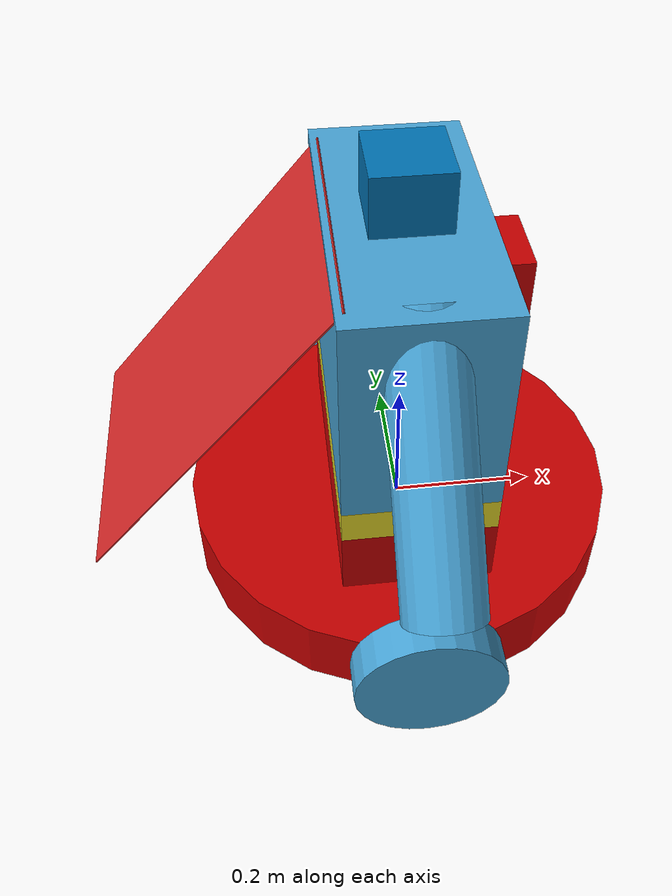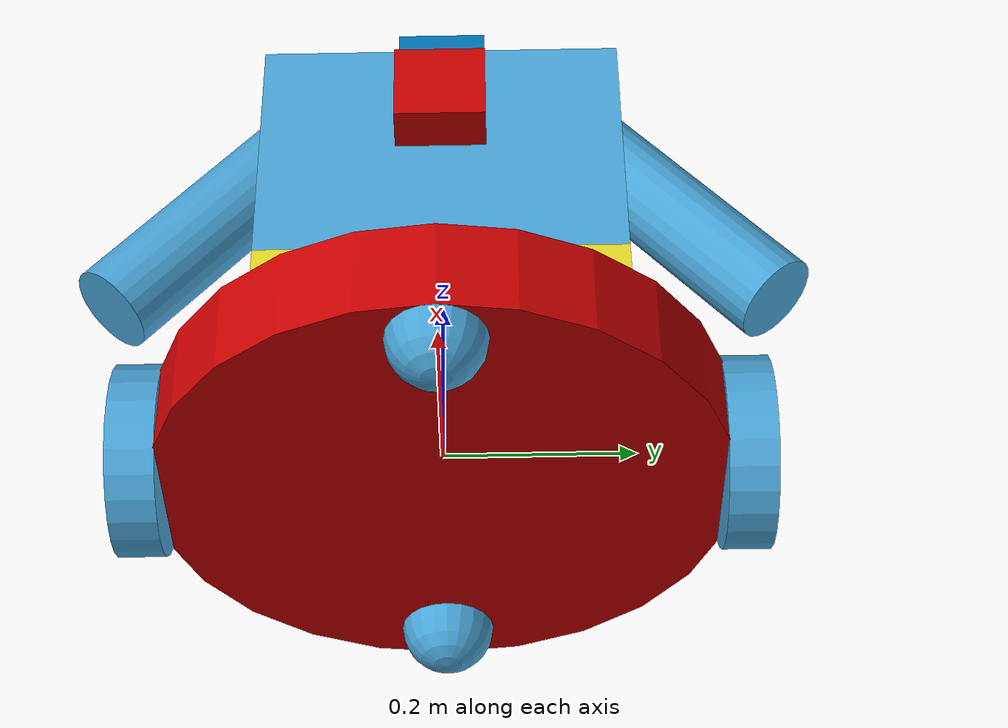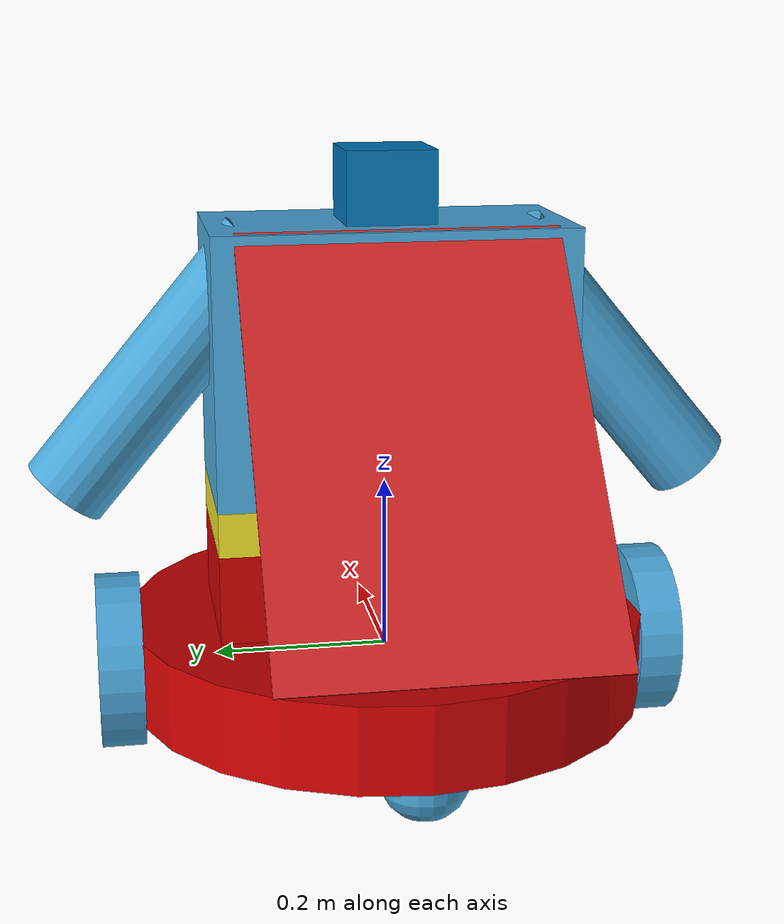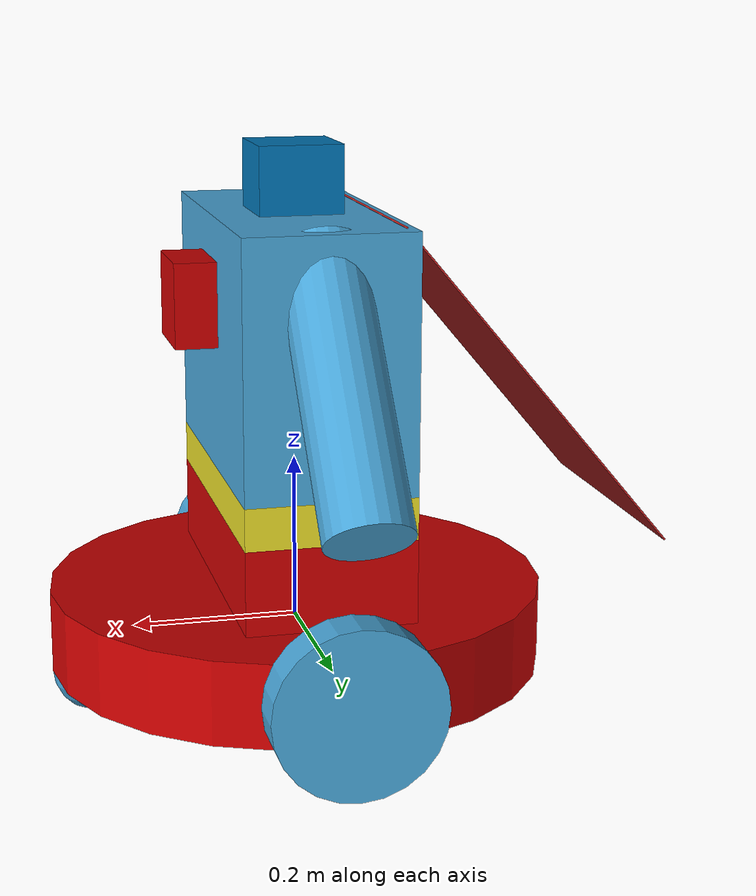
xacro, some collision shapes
<?xml version='1.0'?>

<robot name="udacity_bot" xmlns:xacro="http://www.ros.org/wiki/xacro">

  <link name="robot_footprint"></link>
  <xacro:include filename="$(find slam)/urdf/udacity_bot.gazebo" />

  <material name="blue">
    <color rgba="0.2824 0.6431 0.8392 1"/>
  </material>

  <material name="red">
    <color rgba="0.7843 0 0 1"/>
  </material>

  <joint name="robot_footprint_joint" type="fixed">
    <origin xyz="0 0 0" rpy="0 0 0" />
    <parent link="robot_footprint"/>
    <child link="chassis_base" />
  </joint>

  <link name='chassis_base'>
    <pose>0 0 0.1 0 0 0</pose>

    <inertial>
      <mass value="10.0"/>
      <origin xyz="0.0 0 0" rpy=" 0 0 0"/>
      <inertia
          ixx="0.1" ixy="0" ixz="0"
          iyy="0.1" iyz="0"
          izz="0.1"
      />
    </inertial>

    <collision name='collision'>
      <origin xyz="0 0 0" rpy=" 0 0 0"/>
      <geometry>
        <cylinder radius=".3" length="0.10"/>
      </geometry>
    </collision>

    <visual name='chassis_base_visual'>
      <origin xyz="0 0 0" rpy=" 0 0 0"/>
      <geometry>
        <cylinder radius=".3" length="0.10"/>
      </geometry>
      <material name="red"/>
    </visual>

    <collision name='back_caster_collision'>
      <origin xyz="-0.25 0 -0.05" rpy=" 0 0 0"/>
      <geometry>
        <sphere radius="0.0499"/>
      </geometry>
    </collision>

    <visual name='back_caster_visual'>
      <origin xyz="-0.25 0 -0.05" rpy=" 0 0 0"/>
      <geometry>
        <sphere radius="0.05"/>
      </geometry>
      <material name="blue"/>
    </visual>

    <collision name='front_caster_collision'>
      <origin xyz="0.25 0 -0.05" rpy=" 0 0 0"/>
      <geometry>
        <sphere radius="0.0499"/>
      </geometry>
    </collision>

    <visual name='front_caster_visual'>
      <origin xyz="0.25 0 -0.05" rpy=" 0 0 0"/>
      <geometry>
        <sphere radius="0.05"/>
      </geometry>
      <material name="blue"/>
    </visual>

  </link>

  <!--chassis lower-->

  <link name='chassis_lower'>
    <inertial>
      <mass value="5.0"/>
      <origin xyz="0.0 0 0" rpy=" 0 0 0"/>
      <inertia
          ixx="0.1" ixy="0" ixz="0"
          iyy="0.1" iyz="0"
          izz="0.1"
      />
    </inertial>

    <collision name='collision'>
      <origin xyz="0 0 0" rpy=" 0 0 0"/>
      <geometry>
        <box size=".2 .4 .1"/>
      </geometry>
    </collision>

    <visual name='chassis_lower_visual'>
      <origin xyz="0 0 0" rpy=" 0 0 0"/>
      <geometry>
        <box size=".2 .4 .1"/>
      </geometry>
      <material name="red"/>
    </visual>
   </link>

   <joint type="fixed" name="base_joint">
      <origin xyz="0 0 0.1" rpy="0 0 0"/>
      <child link="chassis_lower"/>
      <parent link="chassis_base"/>
      <axis xyz="0 1 0" rpy="0 0 0"/>
      <limit effort="10000" velocity="1000"/>
      <dynamics damping="1.0" friction="1.0"/>
    </joint>

 <!-- chassis mid -->

  <link name='chassis_mid'>
    <inertial>
      <mass value="1.0"/>
      <origin xyz="0.0 0 0" rpy=" 0 0 0"/>
      <inertia
          ixx="0.1" ixy="0" ixz="0"
          iyy="0.1" iyz="0"
          izz="0.1"
      />
    </inertial>

    <collision name='collision'>
      <origin xyz="0 0 0" rpy=" 0 0 0"/>
      <geometry>
        <box size=".2 .4 .05"/>
      </geometry>
    </collision>

    <visual name='chassis_mid_visual'>
      <origin xyz="0 0 0" rpy=" 0 0 0"/>
      <geometry>
        <box size=".2 .4 .05"/>
      </geometry>
    </visual>
   </link>

   <joint type="fixed" name="base_mid_joint">
      <origin xyz="0 0 0.075" rpy="0 0 0"/>
      <child link="chassis_mid"/>
      <parent link="chassis_lower"/>
      <axis xyz="0 1 0" rpy="0 0 0"/>
      <limit effort="10000" velocity="1000"/>
      <dynamics damping="1.0" friction="1.0"/>
    </joint>

  <!--main chassis -->

  <link name='chassis'>
    <inertial>
      <mass value="5.0"/>
      <origin xyz="0.0 0 0" rpy=" 0 0 0"/>
      <inertia
          ixx="0.1" ixy="0" ixz="0"
          iyy="0.1" iyz="0"
          izz="0.1"
      />
    </inertial>

    <collision name='collision'>
      <origin xyz="0 0 0" rpy=" 0 0 0"/>
      <geometry>
        <box size=".2 .4 .3"/>
      </geometry>
    </collision>

    <visual name='chassis_visual'>
      <origin xyz="0 0 0" rpy=" 0 0 0"/>
      <geometry>
        <box size=".2 .4 .3"/>
      </geometry>
      <material name="blue"/>
    </visual>
   </link>

   <joint type="fixed" name="base_top_joint">
      <origin xyz="0 0 0.175" rpy="0 0 0"/>
      <child link="chassis"/>
      <parent link="chassis_mid"/>
      <axis xyz="0 1 0" rpy="0 0 0"/>
      <limit effort="10000" velocity="1000"/>
      <dynamics damping="1.0" friction="1.0"/>
    </joint>

  <!--left wheel-->

  <link name='left_wheel'>

    <inertial>
      <mass value="5.0"/>
      <origin xyz="0.0 0 0" rpy=" 0 1.5707 1.5707"/>
      <inertia
 		ixx="0.1" ixy="0" ixz="0"
    	iyy="0.1" iyz="0"
    	izz="0.1"
      />
    </inertial>

    <collision name='collision'>
      <origin xyz="0 0 0" rpy=" 0 1.5707 1.5707"/>
      <geometry>
        <cylinder radius=".1" length="0.05"/>
      </geometry>
    </collision>

    <visual name='left_wheel_visual'>
      <origin xyz="0 0 0" rpy=" 0 1.5707 1.5707"/>
      <geometry>
        <cylinder radius=".1" length="0.05"/>
      </geometry>
      <material name="blue"/>
    </visual>

  </link>

  <joint type="continuous" name="left_wheel_hinge">
      <origin xyz="0 0.31 0" rpy="0 0 0"/>
      <child link="left_wheel"/>
      <parent link="chassis_base"/>
      <axis xyz="0 1 0" rpy="0 0 0"/>
      <limit effort="10000" velocity="1000"/>
      <dynamics damping="1.0" friction="1.0"/>
    </joint>

  <!--right wheel-->

  <link name='right_wheel'>

    <inertial>
      <mass value="5.0"/>
      <origin xyz="0.0 0 0" rpy=" 0 1.5707 1.5707"/>
      <inertia
 		ixx="0.1" ixy="0" ixz="0"
    	iyy="0.1" iyz="0"
    	izz="0.1"
      />
    </inertial>

    <collision name='collision'>
      <origin xyz="0 0 0" rpy=" 0 1.5707 1.5707"/>
      <geometry>
        <cylinder radius=".1" length="0.05"/>
      </geometry>
    </collision>

    <visual name='right_wheel_visual'>
      <origin xyz="0 0 0" rpy=" 0 1.5707 1.5707"/>
      <geometry>
        <cylinder radius=".1" length="0.05"/>
      </geometry>
      <material name="blue"/>
    </visual>

  </link>

    <joint type="continuous" name="right_wheel_hinge">
        <origin xyz="0 -0.31 0" rpy="0 0 0"/>
        <child link="right_wheel"/>
        <parent link="chassis_base"/>
        <axis xyz="0 1 0" rpy="0 0 0"/>
        <limit effort="10000" velocity="1000"/>
        <dynamics damping="1.0" friction="1.0"/>
      </joint>

  <!--left arm -->

  <link name='left_arm'>

    <inertial>
      <mass value="1.0"/>
      <origin xyz="0.0 0 0" rpy=" 0 -0.7 1.5707"/>
      <inertia
 		ixx="0.1" ixy="0" ixz="0"
    	iyy="0.1" iyz="0"
    	izz="0.1"
      />
    </inertial>

    <collision name='collision'>
      <origin xyz="0 0 0" rpy=" 0 -0.7 1.5707"/>
      <geometry>
        <cylinder radius=".05" length="0.35"/>
      </geometry>
    </collision>

    <visual name='left_arm_visual'>
      <origin xyz="0 0 0" rpy=" 0 -0.7 1.5707"/>
      <geometry>
        <cylinder radius=".05" length="0.35"/>
      </geometry>
      <material name="blue"/>
    </visual>

  </link>

  <joint type="continuous" name="left_arm_hinge">
      <origin xyz="0 0.25 -0.01" rpy="0 0 0"/>
      <child link="left_arm"/>
      <parent link="chassis"/>
      <axis xyz="0 1 0" rpy="0 0 0"/>
      <limit effort="10000" velocity="1000"/>
      <dynamics damping="1.0" friction="1.0"/>
    </joint>

  <!--right arm -->

  <link name='right_arm'>

    <inertial>
      <mass value="1.0"/>
      <origin xyz="0.0 0 0" rpy=" 0 0.7 1.5707"/>
      <inertia
 		ixx="0.1" ixy="0" ixz="0"
    	iyy="0.1" iyz="0"
    	izz="0.1"
      />
    </inertial>

    <collision name='collision'>
      <origin xyz="0 0 0" rpy=" 0 0.7 1.5707"/>
      <geometry>
        <cylinder radius=".05" length="0.35"/>
      </geometry>
    </collision>

    <visual name='right_arm_visual'>
      <origin xyz="0 0 0" rpy=" 0 0.7 1.5707"/>
      <geometry>
        <cylinder radius=".05" length="0.35"/>
      </geometry>
      <material name="blue"/>
    </visual>

  </link>

    <joint type="continuous" name="right_arm_hinge">
        <origin xyz="0 -0.25 -0.01" rpy="0 0 0"/>
        <child link="right_arm"/>
        <parent link="chassis"/>
        <axis xyz="0 1 0" rpy="0 0 0"/>
        <limit effort="10000" velocity="1000"/>
        <dynamics damping="1.0" friction="1.0"/>
      </joint>

   <!-- cape -->

  <link name='chassis_cape'>
    <inertial>
      <mass value="1.0"/>
      <origin xyz="0.0 0 0" rpy=" 0 0 0"/>
      <inertia
          ixx="0.1" ixy="0" ixz="0"
          iyy="0.1" iyz="0"
          izz="0.1"
      />
    </inertial>

    <collision name='collision'>
      <origin xyz="0 0 0" rpy=" 0 0 0"/>
      <geometry>
        <box size=".002 .35 .5"/>
      </geometry>
    </collision>

    <visual name='chassis_cape_visual'>
      <origin xyz="0 0 0" rpy=" 0 0 0"/>
      <geometry>
        <box size=".002 .35 .5"/>
      </geometry>
    </visual>
    <material name="red"/>
   </link>

   <joint type="fixed" name="chassis_cape_joint">
      <origin xyz="-0.25 0 -0.04" rpy="0 0.7 0"/>
      <child link="chassis_cape"/>
      <parent link="chassis"/>
      <axis xyz="0 1 0" rpy="0 0 0"/>
      <limit effort="10000" velocity="1000"/>
      <dynamics damping="1.0" friction="1.0"/>
    </joint>

   <!-- sensors -->

  <link name='camera'>

    <inertial>
      <mass value=".1"/>
      <origin xyz="0.0 0 0" rpy=" 0 0 0"/>
      <inertia
      	ixx="1e-6" ixy="0" ixz="0" iyy="1e-6" iyz="0" izz="1e-6"
      />
    </inertial>

    <collision name='collision'>
      <origin xyz="0 0 0" rpy=" 0 0 0"/>
      <geometry>
        <box size="0.1 0.1 0.1"/>
      </geometry>
    </collision>

    <visual name='camera_visual'>
      <origin xyz="0 0 0" rpy=" 0 0 0"/>
      <geometry>
        <box size="0.1 0.1 0.1"/>
      </geometry>
      <material name="red"/>
    </visual>

  </link>

    <joint type="fixed" name="camera_joint">
        <origin xyz="0.1 0 0.05" rpy="0 0 0"/>
        <child link="camera"/>
        <parent link="chassis"/>
        <axis xyz="0 1 0" rpy="0 0 0"/>
        <limit effort="10000" velocity="1000"/>
        <dynamics damping="1.0" friction="1.0"/>
      </joint>

  <link name="camera_rgbd_frame"></link>

  <joint name="camera_rgbd_joint" type="fixed">
    <origin xyz="0 0 0" rpy="-1.5707 0 -1.5707"/>
    <parent link="camera"/>
    <child link="camera_rgbd_frame"/>
  </joint>

  <link name='hokuyo'>

    <inertial>
      <mass value=".1"/>
      <origin xyz="0.0 0 0" rpy=" 0 0 0"/>
      <inertia
      	ixx="1e-6" ixy="0" ixz="0" iyy="1e-6" iyz="0" izz="1e-6"
      />
    </inertial>

    <collision name='collision'>
      <origin xyz="0 0 0" rpy=" 0 0 0"/>
      <geometry>
        <box size="0.1 0.1 0.1"/>
      </geometry>
    </collision>

    <visual name='hokuyo_visual'>
      <origin xyz="0 0 0" rpy=" 0 0 0"/>
      <geometry>
      <mesh filename="package://slam/meshes/hokuyo.dae"/>
      </geometry>
    </visual>

  </link>

    <joint type="fixed" name="hokuyo_joint">
        <origin xyz="0. 0 0.18" rpy="0 0 0"/>
        <child link="hokuyo"/>
        <parent link="chassis"/>
        <axis xyz="0 1 0" rpy="0 0 0"/>
        <limit effort="10000" velocity="1000"/>
        <dynamics damping="1.0" friction="1.0"/>
      </joint>

</robot>
